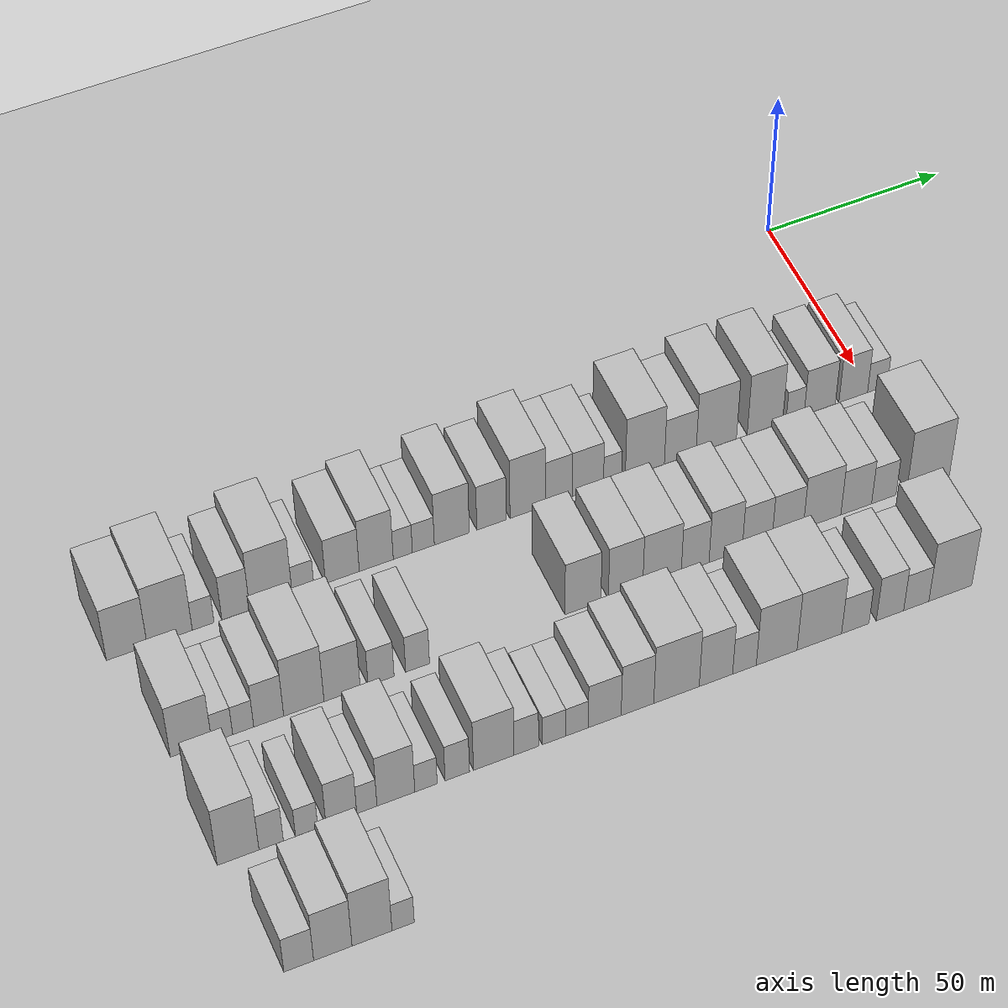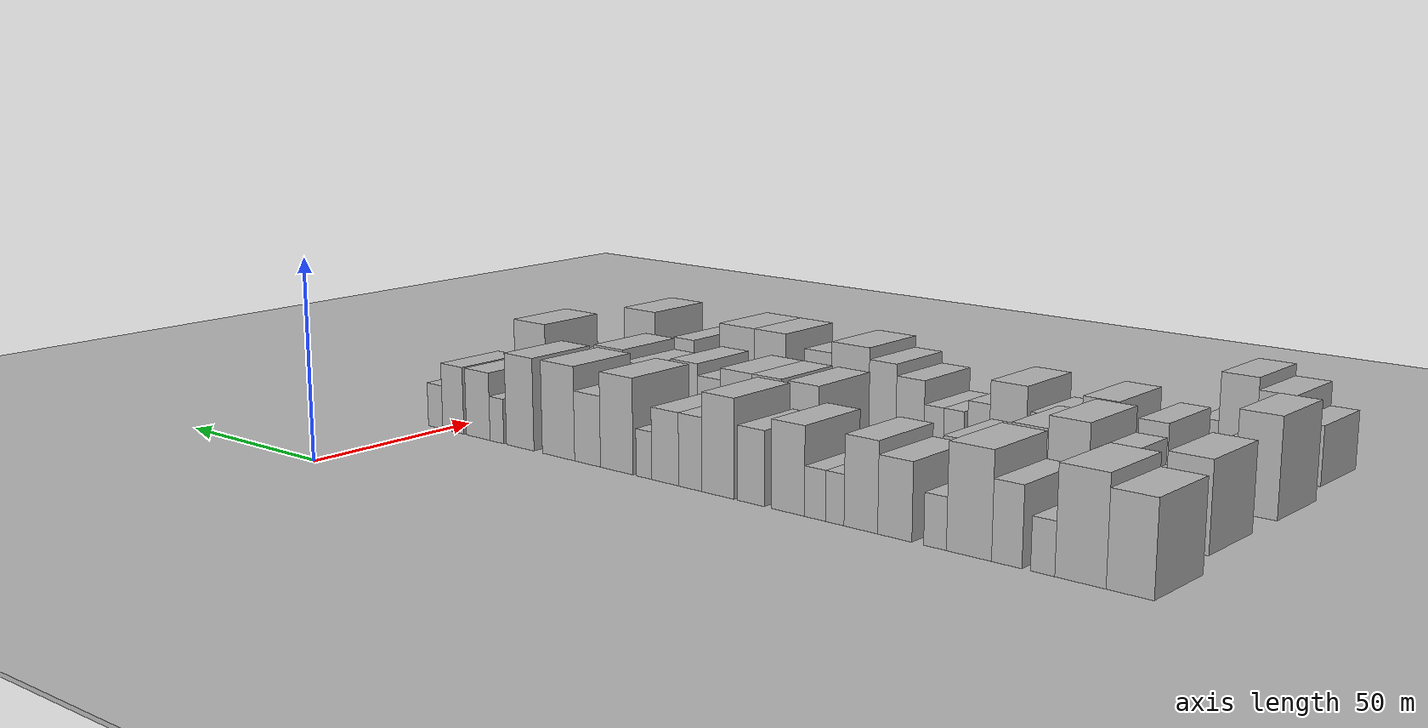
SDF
<sdf version="1.6">
 <world name="default">
  <include><name>ground_plane_1</name><uri>model://HANNAS_ground_plane</uri></include>
  <include>
   <name>ground_plane_2</name>
   <uri>model://HANNAS_ground_plane</uri>
   <pose>100 0 0  0 0 0</pose>
  </include>
  <model name="building_33">
   <static>1</static>
   <pose>50.0000 -200.8544 0 0.000000 0.000000 0.000000</pose>
   <link name="link">
    <pose>0 0 10.50 0 0 0</pose>
    <collision name="collision"><geometry><box><size>20.0000 10.4291 21.0000</size></box></geometry></collision>
    <visual name="visual">
     <cast_shadows>0</cast_shadows>
     <geometry><box><size>20.0000 10.4291 21.0000</size></box></geometry>
     <material>
      <script>
       <uri>model://HANNAS_wall/materials/scripts</uri>
       <uri>model://HANNAS_wall/materials/textures</uri>
       <name>vrc/HANNAS_wall</name>
      </script>
     </material>
    </visual>
   </link>
  </model>
  <model name="building_34">
   <static>1</static>
   <pose>50.0000 -189.8872 0 0.000000 0.000000 0.000000</pose>
   <link name="link">
    <pose>0 0 12.00 0 0 0</pose>
    <collision name="collision"><geometry><box><size>20.0000 11.5054 24.0000</size></box></geometry></collision>
    <visual name="visual">
     <cast_shadows>0</cast_shadows>
     <geometry><box><size>20.0000 11.5054 24.0000</size></box></geometry>
     <material>
      <script>
       <uri>model://HANNAS_wall/materials/scripts</uri>
       <uri>model://HANNAS_wall/materials/textures</uri>
       <name>vrc/HANNAS_wall</name>
      </script>
     </material>
    </visual>
   </link>
  </model>
  <model name="building_35">
   <static>1</static>
   <pose>50.0000 -181.3341 0 0.000000 0.000000 0.000000</pose>
   <link name="link">
    <pose>0 0 6.00 0 0 0</pose>
    <collision name="collision"><geometry><box><size>20.0000 5.6009 12.0000</size></box></geometry></collision>
    <visual name="visual">
     <cast_shadows>0</cast_shadows>
     <geometry><box><size>20.0000 5.6009 12.0000</size></box></geometry>
     <material>
      <script>
       <uri>model://HANNAS_wall/materials/scripts</uri>
       <uri>model://HANNAS_wall/materials/textures</uri>
       <name>vrc/HANNAS_wall</name>
      </script>
     </material>
    </visual>
   </link>
  </model>
  <model name="building_36">
   <static>1</static>
   <pose>50.0000 -172.9242 0 0.000000 0.000000 0.000000</pose>
   <link name="link">
    <pose>0 0 9.00 0 0 0</pose>
    <collision name="collision"><geometry><box><size>20.0000 7.2188 18.0000</size></box></geometry></collision>
    <visual name="visual">
     <cast_shadows>0</cast_shadows>
     <geometry><box><size>20.0000 7.2188 18.0000</size></box></geometry>
     <material>
      <script>
       <uri>model://HANNAS_wall/materials/scripts</uri>
       <uri>model://HANNAS_wall/materials/textures</uri>
       <name>vrc/HANNAS_wall</name>
      </script>
     </material>
    </visual>
   </link>
  </model>
  <model name="building_37">
   <static>1</static>
   <pose>50.0000 -163.7981 0 0.000000 0.000000 0.000000</pose>
   <link name="link">
    <pose>0 0 12.00 0 0 0</pose>
    <collision name="collision"><geometry><box><size>20.0000 11.0333 24.0000</size></box></geometry></collision>
    <visual name="visual">
     <cast_shadows>0</cast_shadows>
     <geometry><box><size>20.0000 11.0333 24.0000</size></box></geometry>
     <material>
      <script>
       <uri>model://HANNAS_wall/materials/scripts</uri>
       <uri>model://HANNAS_wall/materials/textures</uri>
       <name>vrc/HANNAS_wall</name>
      </script>
     </material>
    </visual>
   </link>
  </model>
  <model name="building_38">
   <static>1</static>
   <pose>50.0000 -155.4298 0 0.000000 0.000000 0.000000</pose>
   <link name="link">
    <pose>0 0 6.00 0 0 0</pose>
    <collision name="collision"><geometry><box><size>20.0000 5.7034 12.0000</size></box></geometry></collision>
    <visual name="visual">
     <cast_shadows>0</cast_shadows>
     <geometry><box><size>20.0000 5.7034 12.0000</size></box></geometry>
     <material>
      <script>
       <uri>model://HANNAS_wall/materials/scripts</uri>
       <uri>model://HANNAS_wall/materials/textures</uri>
       <name>vrc/HANNAS_wall</name>
      </script>
     </material>
    </visual>
   </link>
  </model>
  <model name="building_39">
   <static>1</static>
   <pose>50.0000 -145.1319 0 0.000000 0.000000 0.000000</pose>
   <link name="link">
    <pose>0 0 9.00 0 0 0</pose>
    <collision name="collision"><geometry><box><size>20.0000 8.8923 18.0000</size></box></geometry></collision>
    <visual name="visual">
     <cast_shadows>0</cast_shadows>
     <geometry><box><size>20.0000 8.8923 18.0000</size></box></geometry>
     <material>
      <script>
       <uri>model://HANNAS_wall/materials/scripts</uri>
       <uri>model://HANNAS_wall/materials/textures</uri>
       <name>vrc/HANNAS_wall</name>
      </script>
     </material>
    </visual>
   </link>
  </model>
  <model name="building_40">
   <static>1</static>
   <pose>50.0000 -136.2018 0 0.000000 0.000000 0.000000</pose>
   <link name="link">
    <pose>0 0 10.50 0 0 0</pose>
    <collision name="collision"><geometry><box><size>20.0000 8.9679 21.0000</size></box></geometry></collision>
    <visual name="visual">
     <cast_shadows>0</cast_shadows>
     <geometry><box><size>20.0000 8.9679 21.0000</size></box></geometry>
     <material>
      <script>
       <uri>model://HANNAS_wall/materials/scripts</uri>
       <uri>model://HANNAS_wall/materials/textures</uri>
       <name>vrc/HANNAS_wall</name>
      </script>
     </material>
    </visual>
   </link>
  </model>
  <model name="building_41">
   <static>1</static>
   <pose>50.0000 -129.1809 0 0.000000 0.000000 0.000000</pose>
   <link name="link">
    <pose>0 0 6.00 0 0 0</pose>
    <collision name="collision"><geometry><box><size>20.0000 5.0738 12.0000</size></box></geometry></collision>
    <visual name="visual">
     <cast_shadows>0</cast_shadows>
     <geometry><box><size>20.0000 5.0738 12.0000</size></box></geometry>
     <material>
      <script>
       <uri>model://HANNAS_wall/materials/scripts</uri>
       <uri>model://HANNAS_wall/materials/textures</uri>
       <name>vrc/HANNAS_wall</name>
      </script>
     </material>
    </visual>
   </link>
  </model>
  <model name="building_42">
   <static>1</static>
   <pose>50.0000 -123.7242 0 0.000000 0.000000 0.000000</pose>
   <link name="link">
    <pose>0 0 6.00 0 0 0</pose>
    <collision name="collision"><geometry><box><size>20.0000 5.8395 12.0000</size></box></geometry></collision>
    <visual name="visual">
     <cast_shadows>0</cast_shadows>
     <geometry><box><size>20.0000 5.8395 12.0000</size></box></geometry>
     <material>
      <script>
       <uri>model://HANNAS_wall/materials/scripts</uri>
       <uri>model://HANNAS_wall/materials/textures</uri>
       <name>vrc/HANNAS_wall</name>
      </script>
     </material>
    </visual>
   </link>
  </model>
  <model name="building_43">
   <static>1</static>
   <pose>50.0000 -116.1181 0 0.000000 0.000000 0.000000</pose>
   <link name="link">
    <pose>0 0 10.50 0 0 0</pose>
    <collision name="collision"><geometry><box><size>20.0000 9.3727 21.0000</size></box></geometry></collision>
    <visual name="visual">
     <cast_shadows>0</cast_shadows>
     <geometry><box><size>20.0000 9.3727 21.0000</size></box></geometry>
     <material>
      <script>
       <uri>model://HANNAS_wall/materials/scripts</uri>
       <uri>model://HANNAS_wall/materials/textures</uri>
       <name>vrc/HANNAS_wall</name>
      </script>
     </material>
    </visual>
   </link>
  </model>
  <model name="building_44">
   <static>1</static>
   <pose>50.0000 -105.4651 0 0.000000 0.000000 0.000000</pose>
   <link name="link">
    <pose>0 0 9.00 0 0 0</pose>
    <collision name="collision"><geometry><box><size>20.0000 7.9334 18.0000</size></box></geometry></collision>
    <visual name="visual">
     <cast_shadows>0</cast_shadows>
     <geometry><box><size>20.0000 7.9334 18.0000</size></box></geometry>
     <material>
      <script>
       <uri>model://HANNAS_wall/materials/scripts</uri>
       <uri>model://HANNAS_wall/materials/textures</uri>
       <name>vrc/HANNAS_wall</name>
      </script>
     </material>
    </visual>
   </link>
  </model>
  <model name="building_45">
   <static>1</static>
   <pose>50.0000 -95.6676 0 0.000000 0.000000 0.000000</pose>
   <link name="link">
    <pose>0 0 12.00 0 0 0</pose>
    <collision name="collision"><geometry><box><size>20.0000 9.6616 24.0000</size></box></geometry></collision>
    <visual name="visual">
     <cast_shadows>0</cast_shadows>
     <geometry><box><size>20.0000 9.6616 24.0000</size></box></geometry>
     <material>
      <script>
       <uri>model://HANNAS_wall/materials/scripts</uri>
       <uri>model://HANNAS_wall/materials/textures</uri>
       <name>vrc/HANNAS_wall</name>
      </script>
     </material>
    </visual>
   </link>
  </model>
  <model name="building_46">
   <static>1</static>
   <pose>50.0000 -87.2326 0 0.000000 0.000000 0.000000</pose>
   <link name="link">
    <pose>0 0 9.00 0 0 0</pose>
    <collision name="collision"><geometry><box><size>20.0000 7.2084 18.0000</size></box></geometry></collision>
    <visual name="visual">
     <cast_shadows>0</cast_shadows>
     <geometry><box><size>20.0000 7.2084 18.0000</size></box></geometry>
     <material>
      <script>
       <uri>model://HANNAS_wall/materials/scripts</uri>
       <uri>model://HANNAS_wall/materials/textures</uri>
       <name>vrc/HANNAS_wall</name>
      </script>
     </material>
    </visual>
   </link>
  </model>
  <model name="building_47">
   <static>1</static>
   <pose>50.0000 -79.3638 0 0.000000 0.000000 0.000000</pose>
   <link name="link">
    <pose>0 0 9.00 0 0 0</pose>
    <collision name="collision"><geometry><box><size>20.0000 8.5292 18.0000</size></box></geometry></collision>
    <visual name="visual">
     <cast_shadows>0</cast_shadows>
     <geometry><box><size>20.0000 8.5292 18.0000</size></box></geometry>
     <material>
      <script>
       <uri>model://HANNAS_wall/materials/scripts</uri>
       <uri>model://HANNAS_wall/materials/textures</uri>
       <name>vrc/HANNAS_wall</name>
      </script>
     </material>
    </visual>
   </link>
  </model>
  <model name="building_48">
   <static>1</static>
   <pose>50.0000 -72.6055 0 0.000000 0.000000 0.000000</pose>
   <link name="link">
    <pose>0 0 6.00 0 0 0</pose>
    <collision name="collision"><geometry><box><size>20.0000 4.9873 12.0000</size></box></geometry></collision>
    <visual name="visual">
     <cast_shadows>0</cast_shadows>
     <geometry><box><size>20.0000 4.9873 12.0000</size></box></geometry>
     <material>
      <script>
       <uri>model://HANNAS_wall/materials/scripts</uri>
       <uri>model://HANNAS_wall/materials/textures</uri>
       <name>vrc/HANNAS_wall</name>
      </script>
     </material>
    </visual>
   </link>
  </model>
  <model name="building_49">
   <static>1</static>
   <pose>50.0000 -63.7204 0 0.000000 0.000000 0.000000</pose>
   <link name="link">
    <pose>0 0 12.00 0 0 0</pose>
    <collision name="collision"><geometry><box><size>20.0000 10.7830 24.0000</size></box></geometry></collision>
    <visual name="visual">
     <cast_shadows>0</cast_shadows>
     <geometry><box><size>20.0000 10.7830 24.0000</size></box></geometry>
     <material>
      <script>
       <uri>model://HANNAS_wall/materials/scripts</uri>
       <uri>model://HANNAS_wall/materials/textures</uri>
       <name>vrc/HANNAS_wall</name>
      </script>
     </material>
    </visual>
   </link>
  </model>
  <model name="building_50">
   <static>1</static>
   <pose>50.0000 -53.9373 0 0.000000 0.000000 0.000000</pose>
   <link name="link">
    <pose>0 0 9.00 0 0 0</pose>
    <collision name="collision"><geometry><box><size>20.0000 8.7832 18.0000</size></box></geometry></collision>
    <visual name="visual">
     <cast_shadows>0</cast_shadows>
     <geometry><box><size>20.0000 8.7832 18.0000</size></box></geometry>
     <material>
      <script>
       <uri>model://HANNAS_wall/materials/scripts</uri>
       <uri>model://HANNAS_wall/materials/textures</uri>
       <name>vrc/HANNAS_wall</name>
      </script>
     </material>
    </visual>
   </link>
  </model>
  <model name="building_51">
   <static>1</static>
   <pose>50.0000 -43.9038 0 0.000000 0.000000 0.000000</pose>
   <link name="link">
    <pose>0 0 12.00 0 0 0</pose>
    <collision name="collision"><geometry><box><size>20.0000 11.2838 24.0000</size></box></geometry></collision>
    <visual name="visual">
     <cast_shadows>0</cast_shadows>
     <geometry><box><size>20.0000 11.2838 24.0000</size></box></geometry>
     <material>
      <script>
       <uri>model://HANNAS_wall/materials/scripts</uri>
       <uri>model://HANNAS_wall/materials/textures</uri>
       <name>vrc/HANNAS_wall</name>
      </script>
     </material>
    </visual>
   </link>
  </model>
  <model name="building_52">
   <static>1</static>
   <pose>50.0000 -30.2886 0 0.000000 0.000000 0.000000</pose>
   <link name="link">
    <pose>0 0 12.00 0 0 0</pose>
    <collision name="collision"><geometry><box><size>20.0000 9.9465 24.0000</size></box></geometry></collision>
    <visual name="visual">
     <cast_shadows>0</cast_shadows>
     <geometry><box><size>20.0000 9.9465 24.0000</size></box></geometry>
     <material>
      <script>
       <uri>model://HANNAS_wall/materials/scripts</uri>
       <uri>model://HANNAS_wall/materials/textures</uri>
       <name>vrc/HANNAS_wall</name>
      </script>
     </material>
    </visual>
   </link>
  </model>
  <model name="building_53">
   <static>1</static>
   <pose>50.0000 -21.7753 0 0.000000 0.000000 0.000000</pose>
   <link name="link">
    <pose>0 0 6.00 0 0 0</pose>
    <collision name="collision"><geometry><box><size>20.0000 5.0801 12.0000</size></box></geometry></collision>
    <visual name="visual">
     <cast_shadows>0</cast_shadows>
     <geometry><box><size>20.0000 5.0801 12.0000</size></box></geometry>
     <material>
      <script>
       <uri>model://HANNAS_wall/materials/scripts</uri>
       <uri>model://HANNAS_wall/materials/textures</uri>
       <name>vrc/HANNAS_wall</name>
      </script>
     </material>
    </visual>
   </link>
  </model>
  <model name="building_54">
   <static>1</static>
   <pose>50.0000 -14.7899 0 0.000000 0.000000 0.000000</pose>
   <link name="link">
    <pose>0 0 9.00 0 0 0</pose>
    <collision name="collision"><geometry><box><size>20.0000 8.8905 18.0000</size></box></geometry></collision>
    <visual name="visual">
     <cast_shadows>0</cast_shadows>
     <geometry><box><size>20.0000 8.8905 18.0000</size></box></geometry>
     <material>
      <script>
       <uri>model://HANNAS_wall/materials/scripts</uri>
       <uri>model://HANNAS_wall/materials/textures</uri>
       <name>vrc/HANNAS_wall</name>
      </script>
     </material>
    </visual>
   </link>
  </model>
  <model name="building_55">
   <static>1</static>
   <pose>50.0000 -5.2620 0 0.000000 0.000000 0.000000</pose>
   <link name="link">
    <pose>0 0 9.00 0 0 0</pose>
    <collision name="collision"><geometry><box><size>20.0000 8.1654 18.0000</size></box></geometry></collision>
    <visual name="visual">
     <cast_shadows>0</cast_shadows>
     <geometry><box><size>20.0000 8.1654 18.0000</size></box></geometry>
     <material>
      <script>
       <uri>model://HANNAS_wall/materials/scripts</uri>
       <uri>model://HANNAS_wall/materials/textures</uri>
       <name>vrc/HANNAS_wall</name>
      </script>
     </material>
    </visual>
   </link>
  </model>
  <model name="building_56">
   <static>1</static>
   <pose>50.0000 1.6433 0 0.000000 0.000000 0.000000</pose>
   <link name="link">
    <pose>0 0 6.00 0 0 0</pose>
    <collision name="collision"><geometry><box><size>20.0000 5.6452 12.0000</size></box></geometry></collision>
    <visual name="visual">
     <cast_shadows>0</cast_shadows>
     <geometry><box><size>20.0000 5.6452 12.0000</size></box></geometry>
     <material>
      <script>
       <uri>model://HANNAS_wall/materials/scripts</uri>
       <uri>model://HANNAS_wall/materials/textures</uri>
       <name>vrc/HANNAS_wall</name>
      </script>
     </material>
    </visual>
   </link>
  </model>
  <model name="building_141">
   <static>1</static>
   <pose>82.0000 -196.0917 0 0.000000 0.000000 0.000000</pose>
   <link name="link">
    <pose>0 0 10.50 0 0 0</pose>
    <collision name="collision"><geometry><box><size>20.0000 10.3795 21.0000</size></box></geometry></collision>
    <visual name="visual">
     <cast_shadows>0</cast_shadows>
     <geometry><box><size>20.0000 10.3795 21.0000</size></box></geometry>
     <material>
      <script>
       <uri>model://HANNAS_wall/materials/scripts</uri>
       <uri>model://HANNAS_wall/materials/textures</uri>
       <name>vrc/HANNAS_wall</name>
      </script>
     </material>
    </visual>
   </link>
  </model>
  <model name="building_142">
   <static>1</static>
   <pose>82.0000 -188.2773 0 0.000000 0.000000 0.000000</pose>
   <link name="link">
    <pose>0 0 6.00 0 0 0</pose>
    <collision name="collision"><geometry><box><size>20.0000 5.2494 12.0000</size></box></geometry></collision>
    <visual name="visual">
     <cast_shadows>0</cast_shadows>
     <geometry><box><size>20.0000 5.2494 12.0000</size></box></geometry>
     <material>
      <script>
       <uri>model://HANNAS_wall/materials/scripts</uri>
       <uri>model://HANNAS_wall/materials/textures</uri>
       <name>vrc/HANNAS_wall</name>
      </script>
     </material>
    </visual>
   </link>
  </model>
  <model name="building_143">
   <static>1</static>
   <pose>82.0000 -182.9989 0 0.000000 0.000000 0.000000</pose>
   <link name="link">
    <pose>0 0 6.00 0 0 0</pose>
    <collision name="collision"><geometry><box><size>20.0000 5.3073 12.0000</size></box></geometry></collision>
    <visual name="visual">
     <cast_shadows>0</cast_shadows>
     <geometry><box><size>20.0000 5.3073 12.0000</size></box></geometry>
     <material>
      <script>
       <uri>model://HANNAS_wall/materials/scripts</uri>
       <uri>model://HANNAS_wall/materials/textures</uri>
       <name>vrc/HANNAS_wall</name>
      </script>
     </material>
    </visual>
   </link>
  </model>
  <model name="building_144">
   <static>1</static>
   <pose>82.0000 -176.5511 0 0.000000 0.000000 0.000000</pose>
   <link name="link">
    <pose>0 0 9.00 0 0 0</pose>
    <collision name="collision"><geometry><box><size>20.0000 7.5883 18.0000</size></box></geometry></collision>
    <visual name="visual">
     <cast_shadows>0</cast_shadows>
     <geometry><box><size>20.0000 7.5883 18.0000</size></box></geometry>
     <material>
      <script>
       <uri>model://HANNAS_wall/materials/scripts</uri>
       <uri>model://HANNAS_wall/materials/textures</uri>
       <name>vrc/HANNAS_wall</name>
      </script>
     </material>
    </visual>
   </link>
  </model>
  <model name="building_145">
   <static>1</static>
   <pose>82.0000 -167.6243 0 0.000000 0.000000 0.000000</pose>
   <link name="link">
    <pose>0 0 12.00 0 0 0</pose>
    <collision name="collision"><geometry><box><size>20.0000 10.2653 24.0000</size></box></geometry></collision>
    <visual name="visual">
     <cast_shadows>0</cast_shadows>
     <geometry><box><size>20.0000 10.2653 24.0000</size></box></geometry>
     <material>
      <script>
       <uri>model://HANNAS_wall/materials/scripts</uri>
       <uri>model://HANNAS_wall/materials/textures</uri>
       <name>vrc/HANNAS_wall</name>
      </script>
     </material>
    </visual>
   </link>
  </model>
  <model name="building_146">
   <static>1</static>
   <pose>82.0000 -157.8451 0 0.000000 0.000000 0.000000</pose>
   <link name="link">
    <pose>0 0 10.50 0 0 0</pose>
    <collision name="collision"><geometry><box><size>20.0000 9.2931 21.0000</size></box></geometry></collision>
    <visual name="visual">
     <cast_shadows>0</cast_shadows>
     <geometry><box><size>20.0000 9.2931 21.0000</size></box></geometry>
     <material>
      <script>
       <uri>model://HANNAS_wall/materials/scripts</uri>
       <uri>model://HANNAS_wall/materials/textures</uri>
       <name>vrc/HANNAS_wall</name>
      </script>
     </material>
    </visual>
   </link>
  </model>
  <model name="building_147">
   <static>1</static>
   <pose>82.0000 -147.8512 0 0.000000 0.000000 0.000000</pose>
   <link name="link">
    <pose>0 0 7.50 0 0 0</pose>
    <collision name="collision"><geometry><box><size>20.0000 6.6949 15.0000</size></box></geometry></collision>
    <visual name="visual">
     <cast_shadows>0</cast_shadows>
     <geometry><box><size>20.0000 6.6949 15.0000</size></box></geometry>
     <material>
      <script>
       <uri>model://HANNAS_wall/materials/scripts</uri>
       <uri>model://HANNAS_wall/materials/textures</uri>
       <name>vrc/HANNAS_wall</name>
      </script>
     </material>
    </visual>
   </link>
  </model>
  <model name="building_148">
   <static>1</static>
   <pose>82.0000 -138.4165 0 0.000000 0.000000 0.000000</pose>
   <link name="link">
    <pose>0 0 7.50 0 0 0</pose>
    <collision name="collision"><geometry><box><size>20.0000 6.1744 15.0000</size></box></geometry></collision>
    <visual name="visual">
     <cast_shadows>0</cast_shadows>
     <geometry><box><size>20.0000 6.1744 15.0000</size></box></geometry>
     <material>
      <script>
       <uri>model://HANNAS_wall/materials/scripts</uri>
       <uri>model://HANNAS_wall/materials/textures</uri>
       <name>vrc/HANNAS_wall</name>
      </script>
     </material>
    </visual>
   </link>
  </model>
  <model name="building_149">
   <static>1</static>
   <pose>82.0000 -95.0042 0 0.000000 0.000000 0.000000</pose>
   <link name="link">
    <pose>0 0 10.50 0 0 0</pose>
    <collision name="collision"><geometry><box><size>20.0000 9.5501 21.0000</size></box></geometry></collision>
    <visual name="visual">
     <cast_shadows>0</cast_shadows>
     <geometry><box><size>20.0000 9.5501 21.0000</size></box></geometry>
     <material>
      <script>
       <uri>model://HANNAS_wall/materials/scripts</uri>
       <uri>model://HANNAS_wall/materials/textures</uri>
       <name>vrc/HANNAS_wall</name>
      </script>
     </material>
    </visual>
   </link>
  </model>
  <model name="building_150">
   <static>1</static>
   <pose>82.0000 -83.6209 0 0.000000 0.000000 0.000000</pose>
   <link name="link">
    <pose>0 0 10.50 0 0 0</pose>
    <collision name="collision"><geometry><box><size>20.0000 9.2165 21.0000</size></box></geometry></collision>
    <visual name="visual">
     <cast_shadows>0</cast_shadows>
     <geometry><box><size>20.0000 9.2165 21.0000</size></box></geometry>
     <material>
      <script>
       <uri>model://HANNAS_wall/materials/scripts</uri>
       <uri>model://HANNAS_wall/materials/textures</uri>
       <name>vrc/HANNAS_wall</name>
      </script>
     </material>
    </visual>
   </link>
  </model>
  <model name="building_151">
   <static>1</static>
   <pose>82.0000 -73.8313 0 0.000000 0.000000 0.000000</pose>
   <link name="link">
    <pose>0 0 10.50 0 0 0</pose>
    <collision name="collision"><geometry><box><size>20.0000 10.3627 21.0000</size></box></geometry></collision>
    <visual name="visual">
     <cast_shadows>0</cast_shadows>
     <geometry><box><size>20.0000 10.3627 21.0000</size></box></geometry>
     <material>
      <script>
       <uri>model://HANNAS_wall/materials/scripts</uri>
       <uri>model://HANNAS_wall/materials/textures</uri>
       <name>vrc/HANNAS_wall</name>
      </script>
     </material>
    </visual>
   </link>
  </model>
  <model name="building_152">
   <static>1</static>
   <pose>82.0000 -64.8846 0 0.000000 0.000000 0.000000</pose>
   <link name="link">
    <pose>0 0 9.00 0 0 0</pose>
    <collision name="collision"><geometry><box><size>20.0000 7.5306 18.0000</size></box></geometry></collision>
    <visual name="visual">
     <cast_shadows>0</cast_shadows>
     <geometry><box><size>20.0000 7.5306 18.0000</size></box></geometry>
     <material>
      <script>
       <uri>model://HANNAS_wall/materials/scripts</uri>
       <uri>model://HANNAS_wall/materials/textures</uri>
       <name>vrc/HANNAS_wall</name>
      </script>
     </material>
    </visual>
   </link>
  </model>
  <model name="building_153">
   <static>1</static>
   <pose>82.0000 -56.6148 0 0.000000 0.000000 0.000000</pose>
   <link name="link">
    <pose>0 0 10.50 0 0 0</pose>
    <collision name="collision"><geometry><box><size>20.0000 9.0090 21.0000</size></box></geometry></collision>
    <visual name="visual">
     <cast_shadows>0</cast_shadows>
     <geometry><box><size>20.0000 9.0090 21.0000</size></box></geometry>
     <material>
      <script>
       <uri>model://HANNAS_wall/materials/scripts</uri>
       <uri>model://HANNAS_wall/materials/textures</uri>
       <name>vrc/HANNAS_wall</name>
      </script>
     </material>
    </visual>
   </link>
  </model>
  <model name="building_154">
   <static>1</static>
   <pose>82.0000 -48.0225 0 0.000000 0.000000 0.000000</pose>
   <link name="link">
    <pose>0 0 9.00 0 0 0</pose>
    <collision name="collision"><geometry><box><size>20.0000 8.1756 18.0000</size></box></geometry></collision>
    <visual name="visual">
     <cast_shadows>0</cast_shadows>
     <geometry><box><size>20.0000 8.1756 18.0000</size></box></geometry>
     <material>
      <script>
       <uri>model://HANNAS_wall/materials/scripts</uri>
       <uri>model://HANNAS_wall/materials/textures</uri>
       <name>vrc/HANNAS_wall</name>
      </script>
     </material>
    </visual>
   </link>
  </model>
  <model name="building_155">
   <static>1</static>
   <pose>82.0000 -39.6415 0 0.000000 0.000000 0.000000</pose>
   <link name="link">
    <pose>0 0 9.00 0 0 0</pose>
    <collision name="collision"><geometry><box><size>20.0000 8.5864 18.0000</size></box></geometry></collision>
    <visual name="visual">
     <cast_shadows>0</cast_shadows>
     <geometry><box><size>20.0000 8.5864 18.0000</size></box></geometry>
     <material>
      <script>
       <uri>model://HANNAS_wall/materials/scripts</uri>
       <uri>model://HANNAS_wall/materials/textures</uri>
       <name>vrc/HANNAS_wall</name>
      </script>
     </material>
    </visual>
   </link>
  </model>
  <model name="building_156">
   <static>1</static>
   <pose>82.0000 -30.1468 0 0.000000 0.000000 0.000000</pose>
   <link name="link">
    <pose>0 0 10.50 0 0 0</pose>
    <collision name="collision"><geometry><box><size>20.0000 10.4030 21.0000</size></box></geometry></collision>
    <visual name="visual">
     <cast_shadows>0</cast_shadows>
     <geometry><box><size>20.0000 10.4030 21.0000</size></box></geometry>
     <material>
      <script>
       <uri>model://HANNAS_wall/materials/scripts</uri>
       <uri>model://HANNAS_wall/materials/textures</uri>
       <name>vrc/HANNAS_wall</name>
      </script>
     </material>
    </visual>
   </link>
  </model>
  <model name="building_157">
   <static>1</static>
   <pose>82.0000 -20.6657 0 0.000000 0.000000 0.000000</pose>
   <link name="link">
    <pose>0 0 9.00 0 0 0</pose>
    <collision name="collision"><geometry><box><size>20.0000 8.5592 18.0000</size></box></geometry></collision>
    <visual name="visual">
     <cast_shadows>0</cast_shadows>
     <geometry><box><size>20.0000 8.5592 18.0000</size></box></geometry>
     <material>
      <script>
       <uri>model://HANNAS_wall/materials/scripts</uri>
       <uri>model://HANNAS_wall/materials/textures</uri>
       <name>vrc/HANNAS_wall</name>
      </script>
     </material>
    </visual>
   </link>
  </model>
  <model name="building_158">
   <static>1</static>
   <pose>82.0000 -12.9702 0 0.000000 0.000000 0.000000</pose>
   <link name="link">
    <pose>0 0 7.50 0 0 0</pose>
    <collision name="collision"><geometry><box><size>20.0000 6.8317 15.0000</size></box></geometry></collision>
    <visual name="visual">
     <cast_shadows>0</cast_shadows>
     <geometry><box><size>20.0000 6.8317 15.0000</size></box></geometry>
     <material>
      <script>
       <uri>model://HANNAS_wall/materials/scripts</uri>
       <uri>model://HANNAS_wall/materials/textures</uri>
       <name>vrc/HANNAS_wall</name>
      </script>
     </material>
    </visual>
   </link>
  </model>
  <model name="building_159">
   <static>1</static>
   <pose>82.0000 -0.5578 0 0.000000 0.000000 0.000000</pose>
   <link name="link">
    <pose>0 0 12.00 0 0 0</pose>
    <collision name="collision"><geometry><box><size>20.0000 11.9931 24.0000</size></box></geometry></collision>
    <visual name="visual">
     <cast_shadows>0</cast_shadows>
     <geometry><box><size>20.0000 11.9931 24.0000</size></box></geometry>
     <material>
      <script>
       <uri>model://HANNAS_wall/materials/scripts</uri>
       <uri>model://HANNAS_wall/materials/textures</uri>
       <name>vrc/HANNAS_wall</name>
      </script>
     </material>
    </visual>
   </link>
  </model>
  <model name="building_254">
   <static>1</static>
   <pose>114.0000 -196.2469 0 0.000000 0.000000 0.000000</pose>
   <link name="link">
    <pose>0 0 12.00 0 0 0</pose>
    <collision name="collision"><geometry><box><size>20.0000 10.2659 24.0000</size></box></geometry></collision>
    <visual name="visual">
     <cast_shadows>0</cast_shadows>
     <geometry><box><size>20.0000 10.2659 24.0000</size></box></geometry>
     <material>
      <script>
       <uri>model://HANNAS_wall/materials/scripts</uri>
       <uri>model://HANNAS_wall/materials/textures</uri>
       <name>vrc/HANNAS_wall</name>
      </script>
     </material>
    </visual>
   </link>
  </model>
  <model name="building_255">
   <static>1</static>
   <pose>114.0000 -188.1120 0 0.000000 0.000000 0.000000</pose>
   <link name="link">
    <pose>0 0 7.50 0 0 0</pose>
    <collision name="collision"><geometry><box><size>20.0000 6.0039 15.0000</size></box></geometry></collision>
    <visual name="visual">
     <cast_shadows>0</cast_shadows>
     <geometry><box><size>20.0000 6.0039 15.0000</size></box></geometry>
     <material>
      <script>
       <uri>model://HANNAS_wall/materials/scripts</uri>
       <uri>model://HANNAS_wall/materials/textures</uri>
       <name>vrc/HANNAS_wall</name>
      </script>
     </material>
    </visual>
   </link>
  </model>
  <model name="building_256">
   <static>1</static>
   <pose>114.0000 -179.3318 0 0.000000 0.000000 0.000000</pose>
   <link name="link">
    <pose>0 0 6.00 0 0 0</pose>
    <collision name="collision"><geometry><box><size>20.0000 5.5566 12.0000</size></box></geometry></collision>
    <visual name="visual">
     <cast_shadows>0</cast_shadows>
     <geometry><box><size>20.0000 5.5566 12.0000</size></box></geometry>
     <material>
      <script>
       <uri>model://HANNAS_wall/materials/scripts</uri>
       <uri>model://HANNAS_wall/materials/textures</uri>
       <name>vrc/HANNAS_wall</name>
      </script>
     </material>
    </visual>
   </link>
  </model>
  <model name="building_257">
   <static>1</static>
   <pose>114.0000 -170.7039 0 0.000000 0.000000 0.000000</pose>
   <link name="link">
    <pose>0 0 9.00 0 0 0</pose>
    <collision name="collision"><geometry><box><size>20.0000 7.6991 18.0000</size></box></geometry></collision>
    <visual name="visual">
     <cast_shadows>0</cast_shadows>
     <geometry><box><size>20.0000 7.6991 18.0000</size></box></geometry>
     <material>
      <script>
       <uri>model://HANNAS_wall/materials/scripts</uri>
       <uri>model://HANNAS_wall/materials/textures</uri>
       <name>vrc/HANNAS_wall</name>
      </script>
     </material>
    </visual>
   </link>
  </model>
  <model name="building_258">
   <static>1</static>
   <pose>114.0000 -164.3246 0 0.000000 0.000000 0.000000</pose>
   <link name="link">
    <pose>0 0 6.00 0 0 0</pose>
    <collision name="collision"><geometry><box><size>20.0000 5.0596 12.0000</size></box></geometry></collision>
    <visual name="visual">
     <cast_shadows>0</cast_shadows>
     <geometry><box><size>20.0000 5.0596 12.0000</size></box></geometry>
     <material>
      <script>
       <uri>model://HANNAS_wall/materials/scripts</uri>
       <uri>model://HANNAS_wall/materials/textures</uri>
       <name>vrc/HANNAS_wall</name>
      </script>
     </material>
    </visual>
   </link>
  </model>
  <model name="building_259">
   <static>1</static>
   <pose>114.0000 -157.0309 0 0.000000 0.000000 0.000000</pose>
   <link name="link">
    <pose>0 0 10.50 0 0 0</pose>
    <collision name="collision"><geometry><box><size>20.0000 9.5276 21.0000</size></box></geometry></collision>
    <visual name="visual">
     <cast_shadows>0</cast_shadows>
     <geometry><box><size>20.0000 9.5276 21.0000</size></box></geometry>
     <material>
      <script>
       <uri>model://HANNAS_wall/materials/scripts</uri>
       <uri>model://HANNAS_wall/materials/textures</uri>
       <name>vrc/HANNAS_wall</name>
      </script>
     </material>
    </visual>
   </link>
  </model>
  <model name="building_260">
   <static>1</static>
   <pose>114.0000 -149.4459 0 0.000000 0.000000 0.000000</pose>
   <link name="link">
    <pose>0 0 6.00 0 0 0</pose>
    <collision name="collision"><geometry><box><size>20.0000 5.6425 12.0000</size></box></geometry></collision>
    <visual name="visual">
     <cast_shadows>0</cast_shadows>
     <geometry><box><size>20.0000 5.6425 12.0000</size></box></geometry>
     <material>
      <script>
       <uri>model://HANNAS_wall/materials/scripts</uri>
       <uri>model://HANNAS_wall/materials/textures</uri>
       <name>vrc/HANNAS_wall</name>
      </script>
     </material>
    </visual>
   </link>
  </model>
  <model name="building_261">
   <static>1</static>
   <pose>114.0000 -141.5200 0 0.000000 0.000000 0.000000</pose>
   <link name="link">
    <pose>0 0 7.50 0 0 0</pose>
    <collision name="collision"><geometry><box><size>20.0000 6.2092 15.0000</size></box></geometry></collision>
    <visual name="visual">
     <cast_shadows>0</cast_shadows>
     <geometry><box><size>20.0000 6.2092 15.0000</size></box></geometry>
     <material>
      <script>
       <uri>model://HANNAS_wall/materials/scripts</uri>
       <uri>model://HANNAS_wall/materials/textures</uri>
       <name>vrc/HANNAS_wall</name>
      </script>
     </material>
    </visual>
   </link>
  </model>
  <model name="building_262">
   <static>1</static>
   <pose>114.0000 -132.2514 0 0.000000 0.000000 0.000000</pose>
   <link name="link">
    <pose>0 0 10.50 0 0 0</pose>
    <collision name="collision"><geometry><box><size>20.0000 10.3281 21.0000</size></box></geometry></collision>
    <visual name="visual">
     <cast_shadows>0</cast_shadows>
     <geometry><box><size>20.0000 10.3281 21.0000</size></box></geometry>
     <material>
      <script>
       <uri>model://HANNAS_wall/materials/scripts</uri>
       <uri>model://HANNAS_wall/materials/textures</uri>
       <name>vrc/HANNAS_wall</name>
      </script>
     </material>
    </visual>
   </link>
  </model>
  <model name="building_263">
   <static>1</static>
   <pose>114.0000 -123.9300 0 0.000000 0.000000 0.000000</pose>
   <link name="link">
    <pose>0 0 7.50 0 0 0</pose>
    <collision name="collision"><geometry><box><size>20.0000 6.3147 15.0000</size></box></geometry></collision>
    <visual name="visual">
     <cast_shadows>0</cast_shadows>
     <geometry><box><size>20.0000 6.3147 15.0000</size></box></geometry>
     <material>
      <script>
       <uri>model://HANNAS_wall/materials/scripts</uri>
       <uri>model://HANNAS_wall/materials/textures</uri>
       <name>vrc/HANNAS_wall</name>
      </script>
     </material>
    </visual>
   </link>
  </model>
  <model name="building_264">
   <static>1</static>
   <pose>114.0000 -116.7811 0 0.000000 0.000000 0.000000</pose>
   <link name="link">
    <pose>0 0 6.00 0 0 0</pose>
    <collision name="collision"><geometry><box><size>20.0000 5.9831 12.0000</size></box></geometry></collision>
    <visual name="visual">
     <cast_shadows>0</cast_shadows>
     <geometry><box><size>20.0000 5.9831 12.0000</size></box></geometry>
     <material>
      <script>
       <uri>model://HANNAS_wall/materials/scripts</uri>
       <uri>model://HANNAS_wall/materials/textures</uri>
       <name>vrc/HANNAS_wall</name>
      </script>
     </material>
    </visual>
   </link>
  </model>
  <model name="building_265">
   <static>1</static>
   <pose>114.0000 -110.8699 0 0.000000 0.000000 0.000000</pose>
   <link name="link">
    <pose>0 0 6.00 0 0 0</pose>
    <collision name="collision"><geometry><box><size>20.0000 5.8393 12.0000</size></box></geometry></collision>
    <visual name="visual">
     <cast_shadows>0</cast_shadows>
     <geometry><box><size>20.0000 5.8393 12.0000</size></box></geometry>
     <material>
      <script>
       <uri>model://HANNAS_wall/materials/scripts</uri>
       <uri>model://HANNAS_wall/materials/textures</uri>
       <name>vrc/HANNAS_wall</name>
      </script>
     </material>
    </visual>
   </link>
  </model>
  <model name="building_266">
   <static>1</static>
   <pose>114.0000 -103.6674 0 0.000000 0.000000 0.000000</pose>
   <link name="link">
    <pose>0 0 9.00 0 0 0</pose>
    <collision name="collision"><geometry><box><size>20.0000 8.5657 18.0000</size></box></geometry></collision>
    <visual name="visual">
     <cast_shadows>0</cast_shadows>
     <geometry><box><size>20.0000 8.5657 18.0000</size></box></geometry>
     <material>
      <script>
       <uri>model://HANNAS_wall/materials/scripts</uri>
       <uri>model://HANNAS_wall/materials/textures</uri>
       <name>vrc/HANNAS_wall</name>
      </script>
     </material>
    </visual>
   </link>
  </model>
  <model name="building_267">
   <static>1</static>
   <pose>114.0000 -95.1274 0 0.000000 0.000000 0.000000</pose>
   <link name="link">
    <pose>0 0 10.50 0 0 0</pose>
    <collision name="collision"><geometry><box><size>20.0000 8.5143 21.0000</size></box></geometry></collision>
    <visual name="visual">
     <cast_shadows>0</cast_shadows>
     <geometry><box><size>20.0000 8.5143 21.0000</size></box></geometry>
     <material>
      <script>
       <uri>model://HANNAS_wall/materials/scripts</uri>
       <uri>model://HANNAS_wall/materials/textures</uri>
       <name>vrc/HANNAS_wall</name>
      </script>
     </material>
    </visual>
   </link>
  </model>
  <model name="building_268">
   <static>1</static>
   <pose>114.0000 -84.8776 0 0.000000 0.000000 0.000000</pose>
   <link name="link">
    <pose>0 0 12.00 0 0 0</pose>
    <collision name="collision"><geometry><box><size>20.0000 11.9854 24.0000</size></box></geometry></collision>
    <visual name="visual">
     <cast_shadows>0</cast_shadows>
     <geometry><box><size>20.0000 11.9854 24.0000</size></box></geometry>
     <material>
      <script>
       <uri>model://HANNAS_wall/materials/scripts</uri>
       <uri>model://HANNAS_wall/materials/textures</uri>
       <name>vrc/HANNAS_wall</name>
      </script>
     </material>
    </visual>
   </link>
  </model>
  <model name="building_269">
   <static>1</static>
   <pose>114.0000 -74.4719 0 0.000000 0.000000 0.000000</pose>
   <link name="link">
    <pose>0 0 10.50 0 0 0</pose>
    <collision name="collision"><geometry><box><size>20.0000 8.8259 21.0000</size></box></geometry></collision>
    <visual name="visual">
     <cast_shadows>0</cast_shadows>
     <geometry><box><size>20.0000 8.8259 21.0000</size></box></geometry>
     <material>
      <script>
       <uri>model://HANNAS_wall/materials/scripts</uri>
       <uri>model://HANNAS_wall/materials/textures</uri>
       <name>vrc/HANNAS_wall</name>
      </script>
     </material>
    </visual>
   </link>
  </model>
  <model name="building_270">
   <static>1</static>
   <pose>114.0000 -66.9127 0 0.000000 0.000000 0.000000</pose>
   <link name="link">
    <pose>0 0 7.50 0 0 0</pose>
    <collision name="collision"><geometry><box><size>20.0000 6.2924 15.0000</size></box></geometry></collision>
    <visual name="visual">
     <cast_shadows>0</cast_shadows>
     <geometry><box><size>20.0000 6.2924 15.0000</size></box></geometry>
     <material>
      <script>
       <uri>model://HANNAS_wall/materials/scripts</uri>
       <uri>model://HANNAS_wall/materials/textures</uri>
       <name>vrc/HANNAS_wall</name>
      </script>
     </material>
    </visual>
   </link>
  </model>
  <model name="building_271">
   <static>1</static>
   <pose>114.0000 -58.3142 0 0.000000 0.000000 0.000000</pose>
   <link name="link">
    <pose>0 0 12.00 0 0 0</pose>
    <collision name="collision"><geometry><box><size>20.0000 10.9047 24.0000</size></box></geometry></collision>
    <visual name="visual">
     <cast_shadows>0</cast_shadows>
     <geometry><box><size>20.0000 10.9047 24.0000</size></box></geometry>
     <material>
      <script>
       <uri>model://HANNAS_wall/materials/scripts</uri>
       <uri>model://HANNAS_wall/materials/textures</uri>
       <name>vrc/HANNAS_wall</name>
      </script>
     </material>
    </visual>
   </link>
  </model>
  <model name="building_272">
   <static>1</static>
   <pose>114.0000 -46.8731 0 0.000000 0.000000 0.000000</pose>
   <link name="link">
    <pose>0 0 12.00 0 0 0</pose>
    <collision name="collision"><geometry><box><size>20.0000 11.9774 24.0000</size></box></geometry></collision>
    <visual name="visual">
     <cast_shadows>0</cast_shadows>
     <geometry><box><size>20.0000 11.9774 24.0000</size></box></geometry>
     <material>
      <script>
       <uri>model://HANNAS_wall/materials/scripts</uri>
       <uri>model://HANNAS_wall/materials/textures</uri>
       <name>vrc/HANNAS_wall</name>
      </script>
     </material>
    </visual>
   </link>
  </model>
  <model name="building_273">
   <static>1</static>
   <pose>114.0000 -37.1674 0 0.000000 0.000000 0.000000</pose>
   <link name="link">
    <pose>0 0 7.50 0 0 0</pose>
    <collision name="collision"><geometry><box><size>20.0000 7.4342 15.0000</size></box></geometry></collision>
    <visual name="visual">
     <cast_shadows>0</cast_shadows>
     <geometry><box><size>20.0000 7.4342 15.0000</size></box></geometry>
     <material>
      <script>
       <uri>model://HANNAS_wall/materials/scripts</uri>
       <uri>model://HANNAS_wall/materials/textures</uri>
       <name>vrc/HANNAS_wall</name>
      </script>
     </material>
    </visual>
   </link>
  </model>
  <model name="building_274">
   <static>1</static>
   <pose>114.0000 -27.7327 0 0.000000 0.000000 0.000000</pose>
   <link name="link">
    <pose>0 0 9.00 0 0 0</pose>
    <collision name="collision"><geometry><box><size>20.0000 7.4352 18.0000</size></box></geometry></collision>
    <visual name="visual">
     <cast_shadows>0</cast_shadows>
     <geometry><box><size>20.0000 7.4352 18.0000</size></box></geometry>
     <material>
      <script>
       <uri>model://HANNAS_wall/materials/scripts</uri>
       <uri>model://HANNAS_wall/materials/textures</uri>
       <name>vrc/HANNAS_wall</name>
      </script>
     </material>
    </visual>
   </link>
  </model>
  <model name="building_275">
   <static>1</static>
   <pose>114.0000 -20.5681 0 0.000000 0.000000 0.000000</pose>
   <link name="link">
    <pose>0 0 7.50 0 0 0</pose>
    <collision name="collision"><geometry><box><size>20.0000 6.8940 15.0000</size></box></geometry></collision>
    <visual name="visual">
     <cast_shadows>0</cast_shadows>
     <geometry><box><size>20.0000 6.8940 15.0000</size></box></geometry>
     <material>
      <script>
       <uri>model://HANNAS_wall/materials/scripts</uri>
       <uri>model://HANNAS_wall/materials/textures</uri>
       <name>vrc/HANNAS_wall</name>
      </script>
     </material>
    </visual>
   </link>
  </model>
  <model name="building_276">
   <static>1</static>
   <pose>114.0000 -11.2187 0 0.000000 0.000000 0.000000</pose>
   <link name="link">
    <pose>0 0 12.00 0 0 0</pose>
    <collision name="collision"><geometry><box><size>20.0000 11.8048 24.0000</size></box></geometry></collision>
    <visual name="visual">
     <cast_shadows>0</cast_shadows>
     <geometry><box><size>20.0000 11.8048 24.0000</size></box></geometry>
     <material>
      <script>
       <uri>model://HANNAS_wall/materials/scripts</uri>
       <uri>model://HANNAS_wall/materials/textures</uri>
       <name>vrc/HANNAS_wall</name>
      </script>
     </material>
    </visual>
   </link>
  </model>
  <model name="building_373">
   <static>1</static>
   <pose>146.0000 -193.6481 0 0.000000 0.000000 0.000000</pose>
   <link name="link">
    <pose>0 0 7.50 0 0 0</pose>
    <collision name="collision"><geometry><box><size>20.0000 7.2025 15.0000</size></box></geometry></collision>
    <visual name="visual">
     <cast_shadows>0</cast_shadows>
     <geometry><box><size>20.0000 7.2025 15.0000</size></box></geometry>
     <material>
      <script>
       <uri>model://HANNAS_wall/materials/scripts</uri>
       <uri>model://HANNAS_wall/materials/textures</uri>
       <name>vrc/HANNAS_wall</name>
      </script>
     </material>
    </visual>
   </link>
  </model>
  <model name="building_374">
   <static>1</static>
   <pose>146.0000 -185.3965 0 0.000000 0.000000 0.000000</pose>
   <link name="link">
    <pose>0 0 10.50 0 0 0</pose>
    <collision name="collision"><geometry><box><size>20.0000 9.3005 21.0000</size></box></geometry></collision>
    <visual name="visual">
     <cast_shadows>0</cast_shadows>
     <geometry><box><size>20.0000 9.3005 21.0000</size></box></geometry>
     <material>
      <script>
       <uri>model://HANNAS_wall/materials/scripts</uri>
       <uri>model://HANNAS_wall/materials/textures</uri>
       <name>vrc/HANNAS_wall</name>
      </script>
     </material>
    </visual>
   </link>
  </model>
  <model name="building_375">
   <static>1</static>
   <pose>146.0000 -175.8782 0 0.000000 0.000000 0.000000</pose>
   <link name="link">
    <pose>0 0 12.00 0 0 0</pose>
    <collision name="collision"><geometry><box><size>20.0000 9.7362 24.0000</size></box></geometry></collision>
    <visual name="visual">
     <cast_shadows>0</cast_shadows>
     <geometry><box><size>20.0000 9.7362 24.0000</size></box></geometry>
     <material>
      <script>
       <uri>model://HANNAS_wall/materials/scripts</uri>
       <uri>model://HANNAS_wall/materials/textures</uri>
       <name>vrc/HANNAS_wall</name>
      </script>
     </material>
    </visual>
   </link>
  </model>
  <model name="building_376">
   <static>1</static>
   <pose>146.0000 -168.2844 0 0.000000 0.000000 0.000000</pose>
   <link name="link">
    <pose>0 0 6.00 0 0 0</pose>
    <collision name="collision"><geometry><box><size>20.0000 5.4515 12.0000</size></box></geometry></collision>
    <visual name="visual">
     <cast_shadows>0</cast_shadows>
     <geometry><box><size>20.0000 5.4515 12.0000</size></box></geometry>
     <material>
      <script>
       <uri>model://HANNAS_wall/materials/scripts</uri>
       <uri>model://HANNAS_wall/materials/textures</uri>
       <name>vrc/HANNAS_wall</name>
      </script>
     </material>
    </visual>
   </link>
  </model>
 </world>
</sdf>
